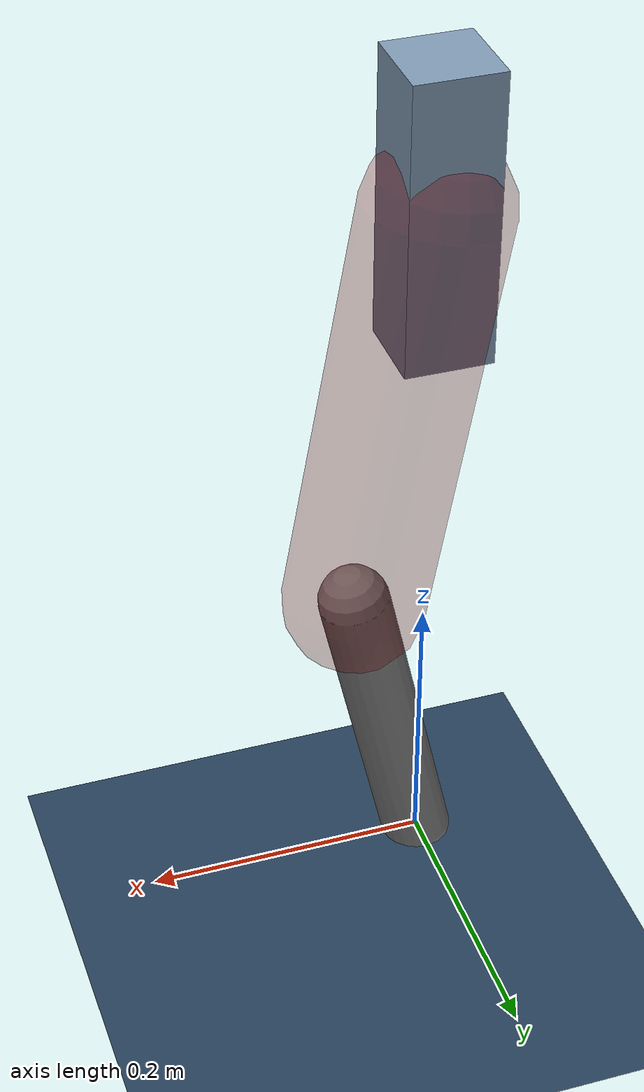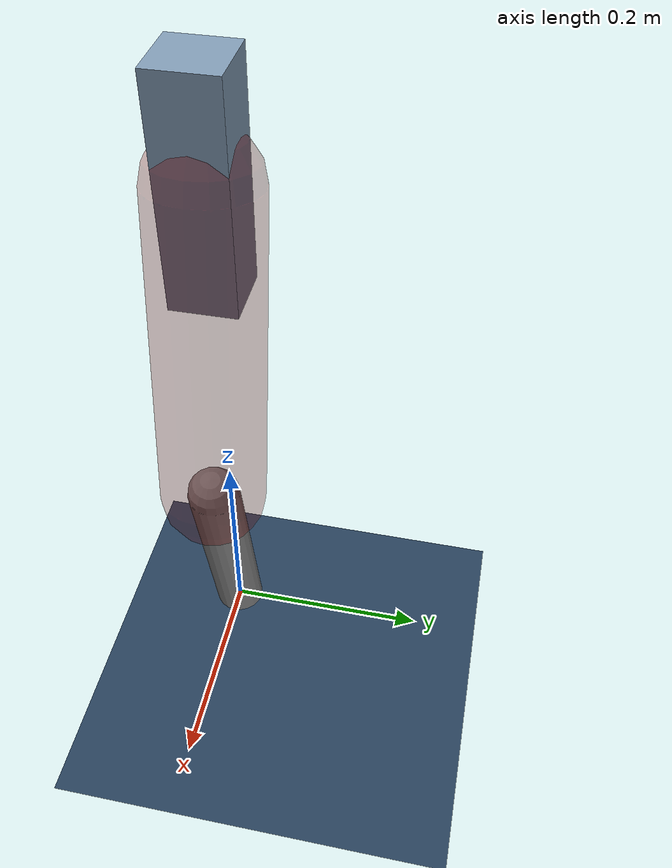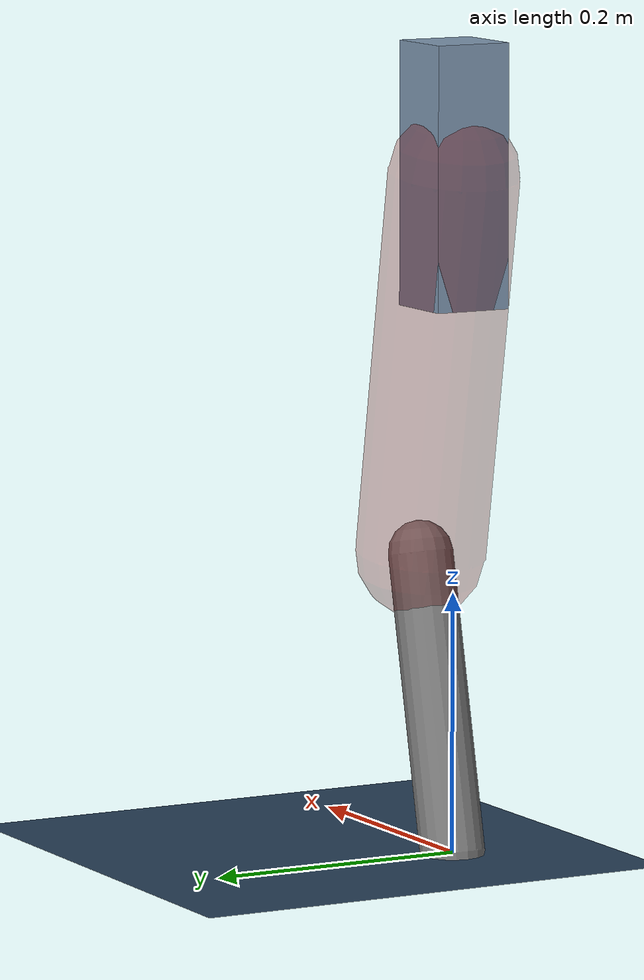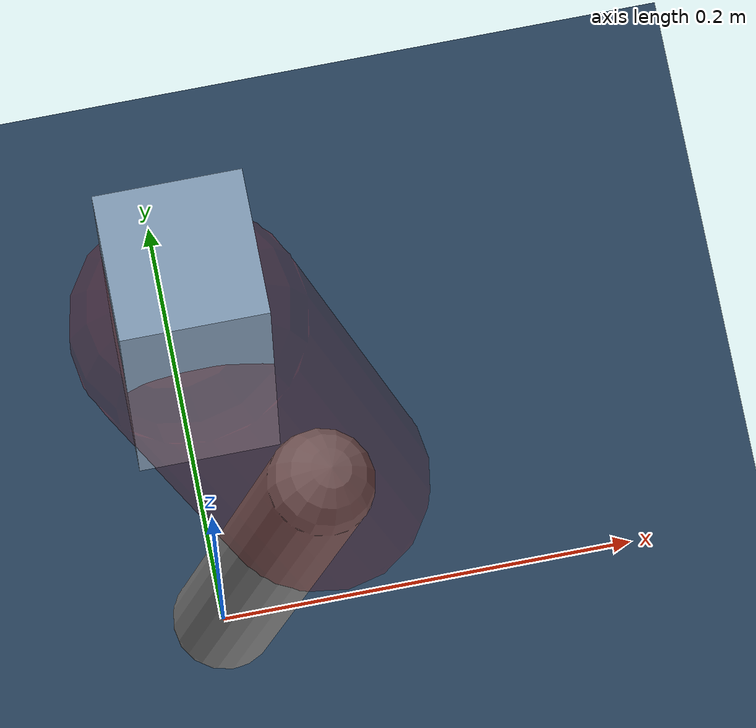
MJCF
<mujoco model="Hopper2D">
	<compiler inertiafromgeom="true" angle="radian" />
	<option timestep="0.001" integrator="implicit" cone="elliptic" solver="Newton" tolerance="1e-10" />

	<default>
		<geom contype="1" conaffinity="1" condim="3" friction="2 0.005 0.0001" solref="0.005 1" />
		<joint limited="true" damping="0.1" />
	</default>

	<asset>
		<texture name="skybox" type="skybox" builtin="gradient" rgb1=".4 .6 .8" rgb2="0 0 0" width="800" height="800" />
		<texture name="grid" type="2d" builtin="checker" rgb1=".1 .2 .3" rgb2=".2 .3 .4" width="300" height="300" mark="edge" markrgb=".2 .3 .4" />
		<material name="ground" texture="grid" texrepeat="1 1" texuniform="true" reflectance="0.1" />
		<material name="leg" rgba="0.5 0.6 0.7 1" />
	</asset>

	<worldbody>

		<geom name="floor" type="plane" size="5 5 0.25" material="ground" />

		<light directional="false" diffuse="0.8 0.8 0.8" specular="0.3 0.3 0.3" pos="0 0 2" dir="0 0 -1" />
		<light mode="targetbodycom" target="base" directional="false" diffuse="0.8 0.8 0.8" specular="0.3 0.3 0.3" pos="0 0 2" dir="0 0 -1" />

		<camera name="fixed" pos="0 -2 1" xyaxes="1 0 0 0 0 1" />
		<camera name="tracking" mode="trackcom" pos="0 -3 1" />

		<body name="root" pos="0 0 0.5181624880309993">
			<joint name="slide_x" type="slide" axis="1 0 0" range="-100 100" />
			<joint name="slide_z" type="slide" axis="0 0 1" range="0 10" />

			<body name="base" pos="0 0 0">
				<geom name="torso" type="box" size="0.03 0.03 0.1" mass="2.465" material="leg" />

				<body name="link1" pos="0 0 0" euler="0 1.4001374855683426 0">
					<joint type="hinge" axis="0 -1 0" pos="0 0 0" name="hinge1" limited="true" range="-3.14 3.14" stiffness="0" damping="0.1" />
					<geom name="thigh" type="capsule" fromto="0 0 0 0.29848434903875154 0 0" size="0.05" rgba="0.5 0 0 0.3" mass="0.9846077424046291" />

					<body name="link2" pos="0.29848434903875154 0 0" euler="0 0.3932004414300128 0">
						<joint type="hinge" axis="0 -1 0" pos="0 0 0" name="hinge2" limited="true" range="-3.14 3.14" stiffness="0" damping="0.1" />
						<geom name="shank" type="capsule" fromto="0 0 0 0.22967813899224776 0 0" size="0.025" mass="0.4257425111937982" />

					</body>
				</body>
			</body>
		</body>
	</worldbody>

	<actuator>
		<motor name="torque1" joint="hinge1" ctrlrange="-21.05268264681225 21.05268264681225" ctrllimited="true" gear="1" />
		<motor name="torque2" joint="hinge2" ctrlrange="-148.68947394732712 148.68947394732712" ctrllimited="true" gear="1" />
	</actuator>
</mujoco>
